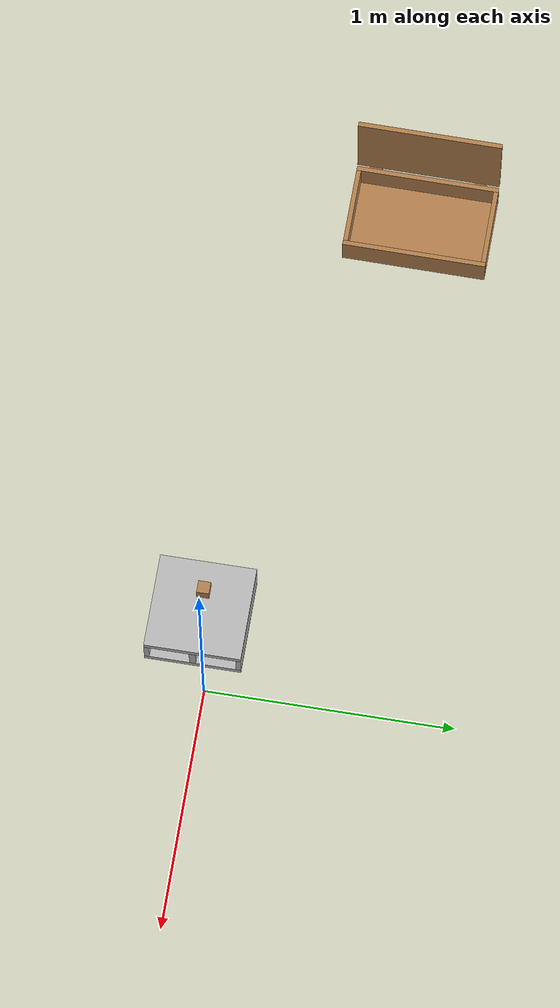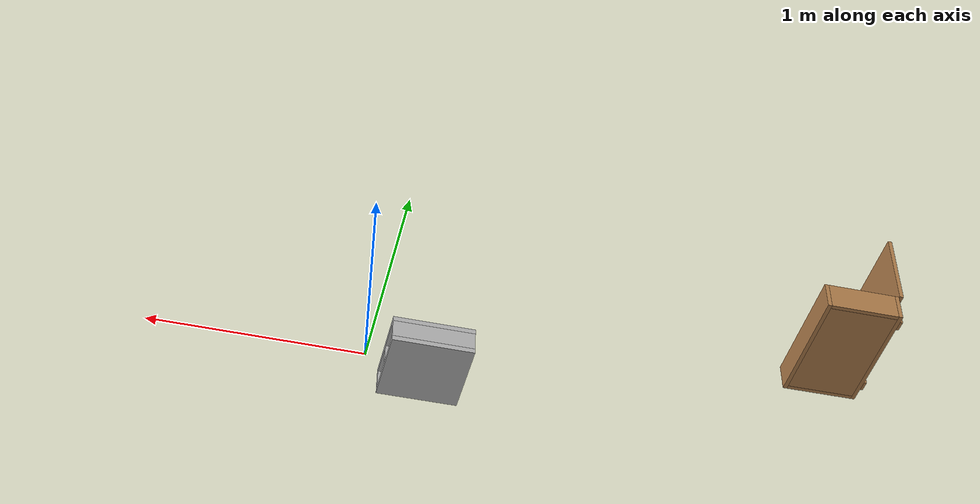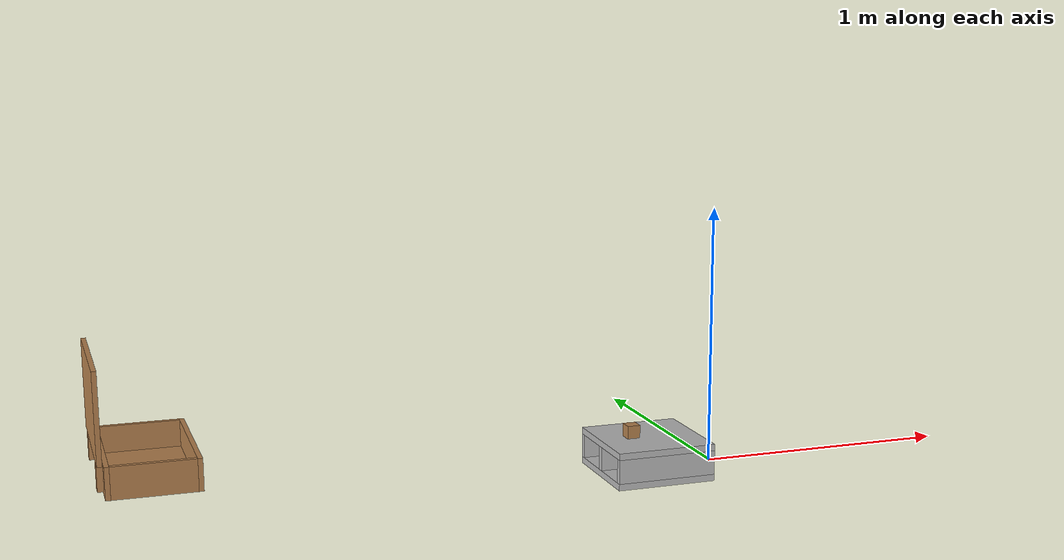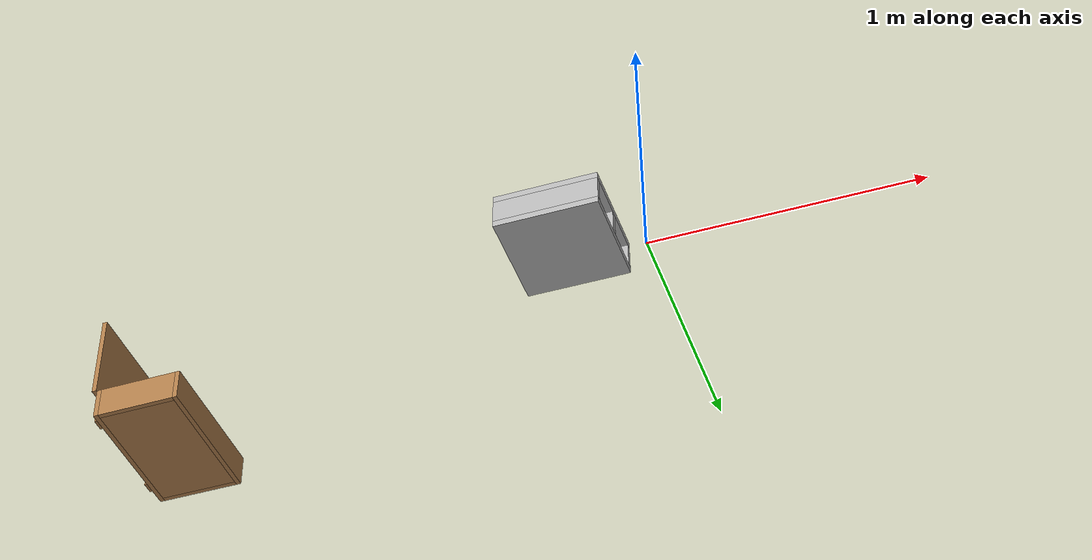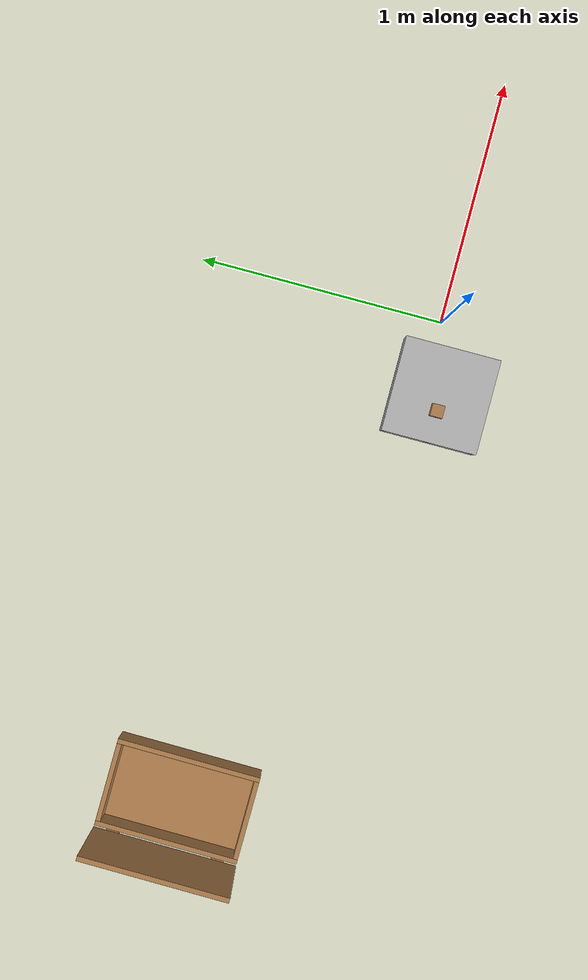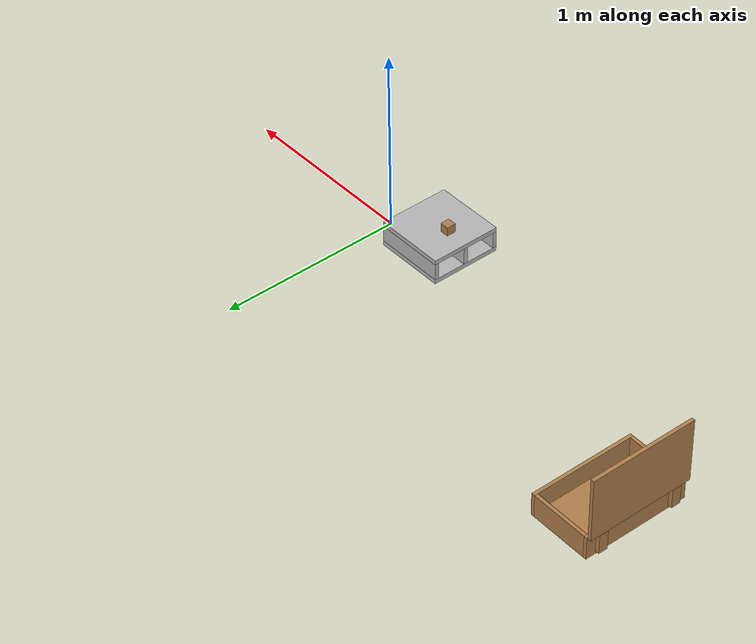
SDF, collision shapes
<?xml version='1.0'?>
<sdf version='1.6'>
  <model name='test_ground_final_1'>
    <link name='link'>
      <pose frame=''>-0.358127 -0.06074 0.168245 0 -0 0</pose>
      <inertial>
        <mass>0.000565</mass>
        <inertia>
          <ixx>2.4e-07</ixx>
          <ixy>0</ixy>
          <ixz>0</ixz>
          <iyy>2.4e-07</iyy>
          <iyz>0</iyz>
          <izz>2.4e-07</izz>
        </inertia>
        <pose frame=''>0 0 0 0 -0 0</pose>
      </inertial>
      <self_collide>0</self_collide>
      <enable_wind>0</enable_wind>
      <kinematic>0</kinematic>
      <gravity>1</gravity>
      <visual name='visual'>
        <geometry>
          <box>
            <size>0.05 0.05 0.05</size>
          </box>
        </geometry>
        <material>
          <script>
            <uri>file://media/materials/scripts/gazebo.material</uri>
            <name>Gazebo/Wood</name>
          </script>
          <shader type='vertex'>
            <normal_map>__default__</normal_map>
          </shader>
          <ambient>1 1 1 1</ambient>
          <diffuse>1 1 1 1</diffuse>
          <specular>0.2 0.2 0.2 1</specular>
          <emissive>0 0 0 1</emissive>
        </material>
        <pose frame=''>0 0 0 0 -0 0</pose>
        <transparency>0</transparency>
        <cast_shadows>1</cast_shadows>
      </visual>
      <collision name='collision'>
        <laser_retro>0</laser_retro>
        <max_contacts>10</max_contacts>
        <pose frame=''>0 0 0 0 -0 0</pose>
        <geometry>
          <box>
            <size>0.05 0.05 0.05</size>
          </box>
        </geometry>
        <surface>
          <friction>
            <ode>
              <mu>1</mu>
              <mu2>1</mu2>
              <fdir1>0 0 0</fdir1>
              <slip1>0</slip1>
              <slip2>0</slip2>
            </ode>
            <torsional>
              <coefficient>1</coefficient>
              <patch_radius>0</patch_radius>
              <surface_radius>0.05</surface_radius>
              <use_patch_radius>0</use_patch_radius>
              <ode>
                <slip>0</slip>
              </ode>
            </torsional>
          </friction>
          <bounce>
            <restitution_coefficient>0</restitution_coefficient>
            <threshold>1e+06</threshold>
          </bounce>
          <contact>
            <collide_without_contact>0</collide_without_contact>
            <collide_without_contact_bitmask>1</collide_without_contact_bitmask>
            <collide_bitmask>1</collide_bitmask>
            <ode>
              <soft_cfm>0</soft_cfm>
              <soft_erp>0.2</soft_erp>
              <kp>100000</kp>
              <kd>1</kd>
              <max_vel>1</max_vel>
              <min_depth>0.001</min_depth>
            </ode>
            <bullet>
              <split_impulse>1</split_impulse>
              <split_impulse_penetration_threshold>-0.01</split_impulse_penetration_threshold>
              <soft_cfm>0</soft_cfm>
              <soft_erp>0.2</soft_erp>
              <kp>100000</kp>
              <kd>1</kd>
            </bullet>
          </contact>
        </surface>
      </collision>
    </link>
    <model name='cinder_block_wide'>
      <link name='link'>
        <inertial>
          <pose frame=''>0 0 0.071438 0 -0 0</pose>
          <mass>5</mass>
          <inertia>
            <ixx>0.0681466</ixx>
            <ixy>0</ixy>
            <iyy>0.0681466</iyy>
            <ixz>0</ixz>
            <iyz>0</iyz>
            <izz>0.124808</izz>
          </inertia>
        </inertial>
        <visual name='visual'>
          <geometry>
            <mesh>
              <uri>model://cinder_block_wide/meshes/cinder_block_wide.dae</uri>
            </mesh>
          </geometry>
        </visual>
        <collision name='top'>
          <pose frame=''>0 0 0.130175 0 -0 0</pose>
          <geometry>
            <box>
              <size>0.387354 0.387354 0.0254</size>
            </box>
          </geometry>
          <surface>
            <contact>
              <ode>
                <max_vel>0.1</max_vel>
                <min_depth>0.001</min_depth>
              </ode>
            </contact>
            <friction>
              <ode>
                <mu>1</mu>
                <mu2>1</mu2>
              </ode>
              <torsional>
                <ode/>
              </torsional>
            </friction>
            <bounce/>
          </surface>
          <max_contacts>10</max_contacts>
        </collision>
        <collision name='bottom'>
          <pose frame=''>0 0 0.0127 0 -0 0</pose>
          <geometry>
            <box>
              <size>0.387354 0.387354 0.0254</size>
            </box>
          </geometry>
          <surface>
            <contact>
              <ode>
                <max_vel>0.1</max_vel>
                <min_depth>0.001</min_depth>
              </ode>
            </contact>
            <friction>
              <ode>
                <mu>1</mu>
                <mu2>1</mu2>
              </ode>
              <torsional>
                <ode/>
              </torsional>
            </friction>
            <bounce/>
          </surface>
          <max_contacts>10</max_contacts>
        </collision>
        <collision name='left'>
          <pose frame=''>0 -0.183355 0.071438 0 -0 0</pose>
          <geometry>
            <box>
              <size>0.387354 0.020643 0.092075</size>
            </box>
          </geometry>
          <surface>
            <contact>
              <ode>
                <max_vel>0.1</max_vel>
                <min_depth>0.001</min_depth>
              </ode>
            </contact>
            <friction>
              <ode>
                <mu>1</mu>
                <mu2>1</mu2>
              </ode>
              <torsional>
                <ode/>
              </torsional>
            </friction>
            <bounce/>
          </surface>
          <max_contacts>10</max_contacts>
        </collision>
        <collision name='right'>
          <pose frame=''>0 0.183355 0.071438 0 -0 0</pose>
          <geometry>
            <box>
              <size>0.387354 0.020643 0.092075</size>
            </box>
          </geometry>
          <surface>
            <contact>
              <ode>
                <max_vel>0.1</max_vel>
                <min_depth>0.001</min_depth>
              </ode>
            </contact>
            <friction>
              <ode>
                <mu>1</mu>
                <mu2>1</mu2>
              </ode>
              <torsional>
                <ode/>
              </torsional>
            </friction>
            <bounce/>
          </surface>
          <max_contacts>10</max_contacts>
        </collision>
        <collision name='middle'>
          <pose frame=''>0 0 0.071438 0 -0 0</pose>
          <geometry>
            <box>
              <size>0.387354 0.0254 0.092075</size>
            </box>
          </geometry>
          <surface>
            <contact>
              <ode>
                <max_vel>0.1</max_vel>
                <min_depth>0.001</min_depth>
              </ode>
            </contact>
            <friction>
              <ode>
                <mu>1</mu>
                <mu2>1</mu2>
              </ode>
              <torsional>
                <ode/>
              </torsional>
            </friction>
            <bounce/>
          </surface>
          <max_contacts>10</max_contacts>
        </collision>
        <self_collide>0</self_collide>
        <enable_wind>0</enable_wind>
        <kinematic>0</kinematic>
      </link>
      <pose frame=''>-0.292641 -0.063857 0 0 -0 0</pose>
    </model>
    <model name='wooden_case'>
      <link name='base'>
        <pose frame=''>0 0 0.024 0 -0 0</pose>
        <inertial>
          <pose frame=''>-0.022184 0 0.171592 0 -0 0</pose>
          <mass>3.96264</mass>
          <inertia>
            <ixx>0.213536</ixx>
            <ixy>0</ixy>
            <ixz>0.000779377</ixz>
            <iyy>0.0708943</iyy>
            <iyz>0</iyz>
            <izz>0.154604</izz>
          </inertia>
        </inertial>
        <collision name='collision_back'>
          <pose frame=''>-0.053975 0 0.1778 0 -0 0</pose>
          <geometry>
            <box>
              <size>0.01905 0.5461 0.3175</size>
            </box>
          </geometry>
          <surface>
            <contact>
              <poissons_ratio>0.347</poissons_ratio>
              <elastic_modulus>8.8e+09</elastic_modulus>
              <ode>
                <kp>100000</kp>
                <kd>100</kd>
                <max_vel>100</max_vel>
                <min_depth>0.001</min_depth>
              </ode>
            </contact>
            <friction>
              <torsional>
                <coefficient>1</coefficient>
                <use_patch_radius>0</use_patch_radius>
                <surface_radius>0.01</surface_radius>
                <ode/>
              </torsional>
              <ode/>
            </friction>
            <bounce/>
          </surface>
          <max_contacts>10</max_contacts>
        </collision>
        <visual name='visual_back'>
          <pose frame=''>-0.053975 0 0.1778 0 -0 0</pose>
          <geometry>
            <box>
              <size>0.01905 0.5461 0.3175</size>
            </box>
          </geometry>
          <material>
            <script>
              <uri>file://media/materials/scripts/gazebo.material</uri>
              <name>Gazebo/Wood</name>
            </script>
          </material>
        </visual>
        <collision name='collision_bottom'>
          <pose frame=''>0 0 0.009525 0 -0 0</pose>
          <geometry>
            <box>
              <size>0.127 0.5842 0.01905</size>
            </box>
          </geometry>
          <surface>
            <contact>
              <poissons_ratio>0.347</poissons_ratio>
              <elastic_modulus>8.8e+09</elastic_modulus>
              <ode>
                <kp>100000</kp>
                <kd>100</kd>
                <max_vel>100</max_vel>
                <min_depth>0.001</min_depth>
              </ode>
            </contact>
            <friction>
              <torsional>
                <coefficient>1</coefficient>
                <use_patch_radius>0</use_patch_radius>
                <surface_radius>0.01</surface_radius>
                <ode/>
              </torsional>
              <ode/>
            </friction>
            <bounce/>
          </surface>
          <max_contacts>10</max_contacts>
        </collision>
        <visual name='visual_bottom'>
          <pose frame=''>0 0 0.009525 0 -0 0</pose>
          <geometry>
            <box>
              <size>0.127 0.5842 0.01905</size>
            </box>
          </geometry>
          <material>
            <script>
              <uri>file://media/materials/scripts/gazebo.material</uri>
              <name>Gazebo/Wood</name>
            </script>
          </material>
        </visual>
        <collision name='collision_top'>
          <pose frame=''>0 0 0.346075 0 -0 0</pose>
          <geometry>
            <box>
              <size>0.127 0.5842 0.01905</size>
            </box>
          </geometry>
          <surface>
            <contact>
              <poissons_ratio>0.347</poissons_ratio>
              <elastic_modulus>8.8e+09</elastic_modulus>
              <ode>
                <kp>100000</kp>
                <kd>100</kd>
                <max_vel>100</max_vel>
                <min_depth>0.001</min_depth>
              </ode>
            </contact>
            <friction>
              <torsional>
                <coefficient>1</coefficient>
                <use_patch_radius>0</use_patch_radius>
                <surface_radius>0.01</surface_radius>
                <ode/>
              </torsional>
              <ode/>
            </friction>
            <bounce/>
          </surface>
          <max_contacts>10</max_contacts>
        </collision>
        <visual name='visual_top'>
          <pose frame=''>0 0 0.346075 0 -0 0</pose>
          <geometry>
            <box>
              <size>0.127 0.5842 0.01905</size>
            </box>
          </geometry>
          <material>
            <script>
              <uri>file://media/materials/scripts/gazebo.material</uri>
              <name>Gazebo/Wood</name>
            </script>
          </material>
        </visual>
        <collision name='collision_left'>
          <pose frame=''>0 -0.282575 0.1778 0 -0 0</pose>
          <geometry>
            <box>
              <size>0.127 0.01905 0.3175</size>
            </box>
          </geometry>
          <surface>
            <contact>
              <poissons_ratio>0.347</poissons_ratio>
              <elastic_modulus>8.8e+09</elastic_modulus>
              <ode>
                <kp>100000</kp>
                <kd>100</kd>
                <max_vel>100</max_vel>
                <min_depth>0.001</min_depth>
              </ode>
            </contact>
            <friction>
              <torsional>
                <coefficient>1</coefficient>
                <use_patch_radius>0</use_patch_radius>
                <surface_radius>0.01</surface_radius>
                <ode/>
              </torsional>
              <ode/>
            </friction>
            <bounce/>
          </surface>
          <max_contacts>10</max_contacts>
        </collision>
        <visual name='visual_left'>
          <pose frame=''>0 -0.282575 0.1778 0 -0 0</pose>
          <geometry>
            <box>
              <size>0.127 0.01905 0.3175</size>
            </box>
          </geometry>
          <material>
            <script>
              <uri>file://media/materials/scripts/gazebo.material</uri>
              <name>Gazebo/Wood</name>
            </script>
          </material>
        </visual>
        <collision name='collision_right'>
          <pose frame=''>0 0.282575 0.1778 0 -0 0</pose>
          <geometry>
            <box>
              <size>0.127 0.01905 0.3175</size>
            </box>
          </geometry>
          <surface>
            <contact>
              <poissons_ratio>0.347</poissons_ratio>
              <elastic_modulus>8.8e+09</elastic_modulus>
              <ode>
                <kp>100000</kp>
                <kd>100</kd>
                <max_vel>100</max_vel>
                <min_depth>0.001</min_depth>
              </ode>
            </contact>
            <friction>
              <torsional>
                <coefficient>1</coefficient>
                <use_patch_radius>0</use_patch_radius>
                <surface_radius>0.01</surface_radius>
                <ode/>
              </torsional>
              <ode/>
            </friction>
            <bounce/>
          </surface>
          <max_contacts>10</max_contacts>
        </collision>
        <visual name='visual_right'>
          <pose frame=''>0 0.282575 0.1778 0 -0 0</pose>
          <geometry>
            <box>
              <size>0.127 0.01905 0.3175</size>
            </box>
          </geometry>
          <material>
            <script>
              <uri>file://media/materials/scripts/gazebo.material</uri>
              <name>Gazebo/Wood</name>
            </script>
          </material>
        </visual>
        <collision name='collision_block_left'>
          <pose frame=''>0.0095 -0.2151 -0.012 0 -0 0</pose>
          <geometry>
            <box>
              <size>0.108 0.05 0.024</size>
            </box>
          </geometry>
          <surface>
            <contact>
              <poissons_ratio>0.347</poissons_ratio>
              <elastic_modulus>8.8e+09</elastic_modulus>
              <ode>
                <kp>100000</kp>
                <kd>100</kd>
                <max_vel>100</max_vel>
                <min_depth>0.001</min_depth>
              </ode>
            </contact>
            <friction>
              <torsional>
                <coefficient>1</coefficient>
                <use_patch_radius>0</use_patch_radius>
                <surface_radius>0.01</surface_radius>
                <ode/>
              </torsional>
              <ode/>
            </friction>
            <bounce/>
          </surface>
          <max_contacts>10</max_contacts>
        </collision>
        <visual name='visual_block_left'>
          <pose frame=''>0.0095 -0.2151 -0.012 0 -0 0</pose>
          <geometry>
            <box>
              <size>0.108 0.05 0.024</size>
            </box>
          </geometry>
          <material>
            <script>
              <uri>file://media/materials/scripts/gazebo.material</uri>
              <name>Gazebo/Wood</name>
            </script>
          </material>
        </visual>
        <collision name='collision_block_right'>
          <pose frame=''>0.0095 0.2151 -0.012 0 -0 0</pose>
          <geometry>
            <box>
              <size>0.108 0.05 0.024</size>
            </box>
          </geometry>
          <surface>
            <contact>
              <poissons_ratio>0.347</poissons_ratio>
              <elastic_modulus>8.8e+09</elastic_modulus>
              <ode>
                <kp>100000</kp>
                <kd>100</kd>
                <max_vel>100</max_vel>
                <min_depth>0.001</min_depth>
              </ode>
            </contact>
            <friction>
              <torsional>
                <coefficient>1</coefficient>
                <use_patch_radius>0</use_patch_radius>
                <surface_radius>0.01</surface_radius>
                <ode/>
              </torsional>
              <ode/>
            </friction>
            <bounce/>
          </surface>
          <max_contacts>10</max_contacts>
        </collision>
        <visual name='visual_block_right'>
          <pose frame=''>0.0095 0.2151 -0.012 0 -0 0</pose>
          <geometry>
            <box>
              <size>0.108 0.05 0.024</size>
            </box>
          </geometry>
          <material>
            <script>
              <uri>file://media/materials/scripts/gazebo.material</uri>
              <name>Gazebo/Wood</name>
            </script>
          </material>
        </visual>
        <self_collide>0</self_collide>
        <enable_wind>0</enable_wind>
        <kinematic>0</kinematic>
      </link>
      <link name='lid'>
        <pose frame=''>0.243775 0 0.009525 0 -0 0</pose>
        <inertial>
          <mass>1.97874</mass>
          <inertia>
            <ixx>0.0563367</ixx>
            <ixy>0</ixy>
            <ixz>0</ixz>
            <iyy>0.020911</iyy>
            <iyz>0</iyz>
            <izz>0.0771281</izz>
          </inertia>
        </inertial>
        <collision name='collision'>
          <geometry>
            <box>
              <size>0.3556 0.5842 0.01905</size>
            </box>
          </geometry>
          <surface>
            <contact>
              <poissons_ratio>0.347</poissons_ratio>
              <elastic_modulus>8.8e+09</elastic_modulus>
              <ode>
                <kp>100000</kp>
                <kd>100</kd>
                <max_vel>100</max_vel>
                <min_depth>0.001</min_depth>
              </ode>
            </contact>
            <friction>
              <torsional>
                <coefficient>1</coefficient>
                <use_patch_radius>0</use_patch_radius>
                <surface_radius>0.01</surface_radius>
                <ode/>
              </torsional>
              <ode/>
            </friction>
            <bounce/>
          </surface>
          <max_contacts>10</max_contacts>
        </collision>
        <visual name='visual'>
          <geometry>
            <box>
              <size>0.3556 0.5842 0.01905</size>
            </box>
          </geometry>
          <material>
            <script>
              <uri>file://media/materials/scripts/gazebo.material</uri>
              <name>Gazebo/Wood</name>
            </script>
          </material>
        </visual>
        <visual name='tee_nut_1'>
          <pose frame=''>0.122 -0.216 0 0 -0 0</pose>
          <geometry>
            <cylinder>
              <radius>0.00635</radius>
              <length>0.0192405</length>
            </cylinder>
          </geometry>
          <material>
            <script>
              <uri>file://media/materials/scripts/gazebo.material</uri>
              <name>Gazebo/Grey</name>
            </script>
          </material>
        </visual>
        <visual name='tee_nut_2'>
          <pose frame=''>0.122 -0.088 0 0 -0 0</pose>
          <geometry>
            <cylinder>
              <radius>0.00635</radius>
              <length>0.0192405</length>
            </cylinder>
          </geometry>
          <material>
            <script>
              <uri>file://media/materials/scripts/gazebo.material</uri>
              <name>Gazebo/Grey</name>
            </script>
          </material>
        </visual>
        <visual name='tee_nut_3'>
          <pose frame=''>0.122 0.088 0 0 -0 0</pose>
          <geometry>
            <cylinder>
              <radius>0.00635</radius>
              <length>0.0192405</length>
            </cylinder>
          </geometry>
          <material>
            <script>
              <uri>file://media/materials/scripts/gazebo.material</uri>
              <name>Gazebo/Grey</name>
            </script>
          </material>
        </visual>
        <visual name='tee_nut_4'>
          <pose frame=''>0.122 0.216 0 0 -0 0</pose>
          <geometry>
            <cylinder>
              <radius>0.00635</radius>
              <length>0.0192405</length>
            </cylinder>
          </geometry>
          <material>
            <script>
              <uri>file://media/materials/scripts/gazebo.material</uri>
              <name>Gazebo/Grey</name>
            </script>
          </material>
        </visual>
        <self_collide>0</self_collide>
        <enable_wind>0</enable_wind>
        <kinematic>0</kinematic>
      </link>
      <joint name='lid_hinge' type='revolute'>
        <pose frame=''>-0.1778 0 0.01905 0 -0 0</pose>
        <parent>base</parent>
        <child>lid</child>
        <axis>
          <xyz>0 1 0</xyz>
          <limit>
            <upper>0.523599</upper>
            <lower>-1.5708</lower>
          </limit>
          <use_parent_model_frame>0</use_parent_model_frame>
          <dynamics>
            <spring_reference>0</spring_reference>
            <spring_stiffness>0</spring_stiffness>
          </dynamics>
        </axis>
      </joint>
      <pose frame=''>-2.3177 0.531345 0.068332 0.254068 -1.56837 2.87718</pose>
    </model>
    <static>0</static>
    <allow_auto_disable>1</allow_auto_disable>
  </model>
</sdf>
